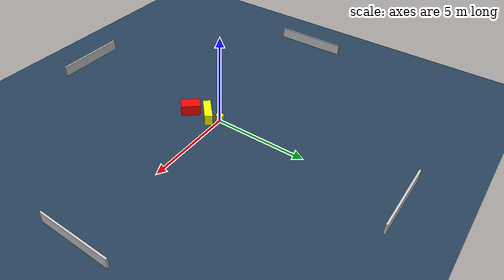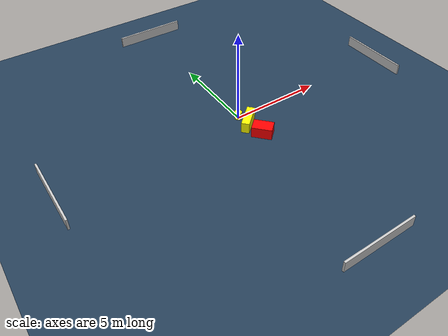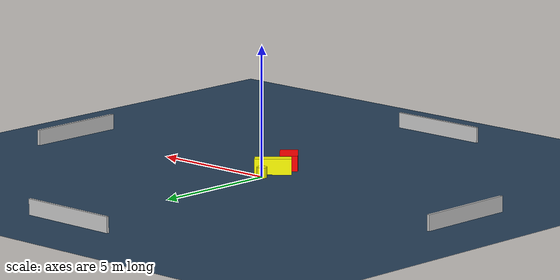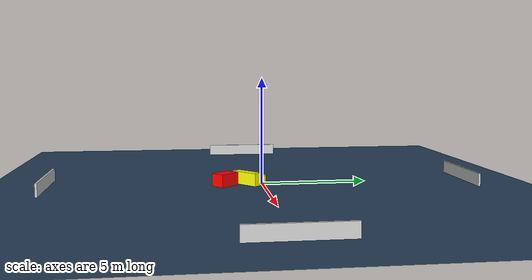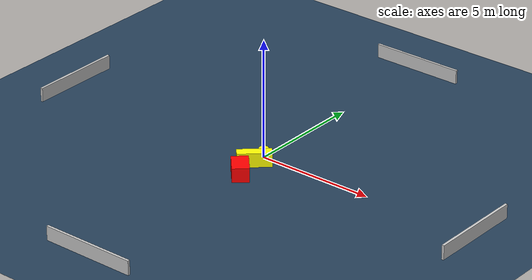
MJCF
<?xml version="1.0" ?>
<mujoco model="generated_environment">
  <option timestep="0.01" integrator="RK4" cone="elliptic"/>
  <default>
    <geom density="1"/>
  </default>
  <asset>
    <texture builtin="gradient" height="3072" name="skybox" rgb1="0.3 0.5 0.7" rgb2="0 0 0" type="skybox" width="512"/>
    <texture builtin="checker" height="300" name="groundplane" rgb1="0.2 0.3 0.4" rgb2="0.1 0.2 0.3" type="2d" width="300"/>
    <material name="groundplane" reflectance="0.2" texrepeat="5 5" texture="groundplane"/>
  </asset>
  <worldbody>
    <light dir="0 0 -1" directional="true" pos="0 0 1.5"/>
    <geom condim="3" friction="0.5 0.005 0.001" material="groundplane" name="floor" pos="0 0 0" size="0 0 0.05" type="plane"/>
    <body name="walls">
      <geom name="wall_1" condim="4" pos="-10.0 0.0 0.3" rgba="0.800000011920929 0.800000011920929 0.800000011920929 1.0" size="0.05 2.0 0.3" type="box"/>
      <geom name="wall_2" condim="4" pos="10.0 0.0 0.3" rgba="0.800000011920929 0.800000011920929 0.800000011920929 1.0" size="0.05 2.0 0.3" type="box"/>
      <geom name="wall_3" condim="4" pos="0.0 -10.0 0.3" rgba="0.800000011920929 0.800000011920929 0.800000011920929 1.0" size="2.0 0.05 0.3" type="box"/>
      <geom name="wall_4" condim="4" pos="0.0 10.0 0.3" rgba="0.800000011920929 0.800000011920929 0.800000011920929 1.0" size="2.0 0.05 0.3" type="box"/>
    </body>
    <body name="robot">
      <joint name="joint_x" type="slide" pos="0 0 0" axis="1 0 0"/>
      <joint name="joint_y" type="slide" pos="0 0 0" axis="0 1 0"/>
      <geom name="robot" type="cylinder" pos="0.0 0.0 0.2" size="0.2 0.2 0.0" mass="5.0" friction="1.0 0.005 0.0001" condim="4" rgba="1.0 1.0 0.0 1.0"/>
    </body>
    <body name="obstacle_1_movable">
      <geom name="obstacle_1_movable" condim="4" pos="0.12124371165123814 -0.7275957888221423 0.3" euler="0 0 42.049280025602435" friction="0.0 0.005 0.001" rgba="1.0 1.0 0.0 1.0" size="0.6947754664302851 0.20936425922382806 0.3" type="box" mass="0.1"/>
      <joint type="free"/>
    </body>
    <body name="obstacle_2_static">
      <geom name="obstacle_2_static" condim="4" pos="0.28458096225223795 -1.7717410829716702 0.3" euler="0 0 222.0790256639613" friction="0.0 0.005 0.001" rgba="1.0 0.0 0.0 1.0" size="0.34606497589103524 0.5239308398153135 0.3" type="box"/>
    </body>
  </worldbody>
  <actuator>
    <motor name="actuator_x" joint="joint_x" gear="1" ctrlrange="-1 1"/>
    <motor name="actuator_y" joint="joint_y" gear="1" ctrlrange="-1 1"/>
  </actuator>
</mujoco>
